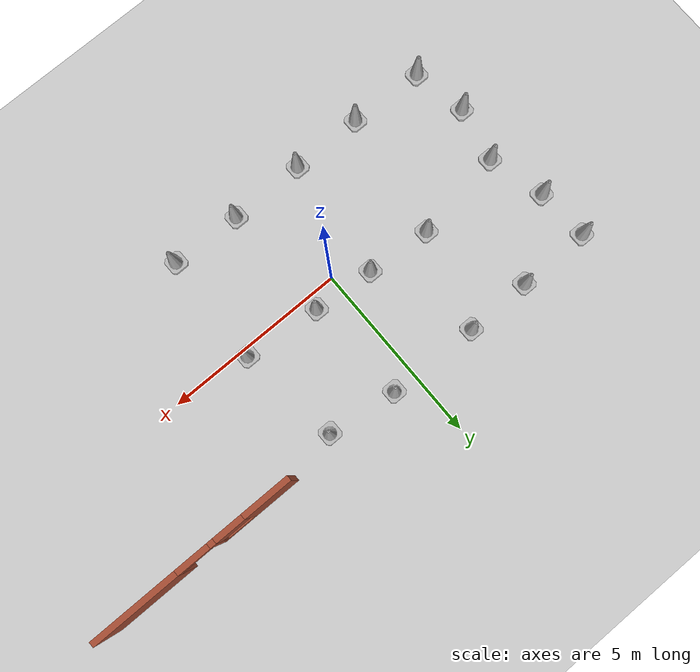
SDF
<sdf version="1.7">
 <world name="default">
  <light name="sun" type="directional">
   <pose>0 0 10 0 -0 0</pose>
   <diffuse>0.8 0.8 0.8 1</diffuse>
   <specular>0.2 0.2 0.2 1</specular>
   <attenuation>
    <range>1000</range>
    <constant>0.9</constant>
    <linear>0.01</linear>
    <quadratic>0.001</quadratic>
   </attenuation>
   <direction>-0.5 0.1 -0.9</direction>
   <spot><inner_angle>0</inner_angle><outer_angle>0</outer_angle><falloff>0</falloff></spot>
  </light>
  <model name="ground_plane">
   <static>1</static>
   <link name="link">
    <collision name="collision">
     <geometry><plane><normal>0 0 1</normal><size>100 100</size></plane></geometry>
     <surface>
      <contact><collide_bitmask>65535</collide_bitmask></contact>
      <friction><ode><mu>100</mu><mu2>50</mu2></ode></friction>
     </surface>
    </collision>
    <visual name="visual">
     <cast_shadows>0</cast_shadows>
     <geometry><plane><normal>0 0 1</normal><size>100 100</size></plane></geometry>
     <material>
      <script><uri>file://media/materials/scripts/gazebo.material</uri><name>Gazebo/Grey</name></script>
     </material>
    </visual>
   </link>
  </model>
  <gravity>0 0 -9.8</gravity>
  <magnetic_field>6e-06 2.3e-05 -4.2e-05</magnetic_field>
  <atmosphere type="adiabatic"/>
  <physics type="ode">
   <max_step_size>0.001</max_step_size>
   <real_time_factor>1</real_time_factor>
   <real_time_update_rate>1000</real_time_update_rate>
  </physics>
  <scene><ambient>0.4 0.4 0.4 1</ambient><background>0.7 0.7 0.7 1</background><shadows>1</shadows></scene>
  <audio><device>default</device></audio>
  <spherical_coordinates>
   <surface_model>EARTH_WGS84</surface_model>
   <latitude_deg>0</latitude_deg>
   <longitude_deg>0</longitude_deg>
   <elevation>0</elevation>
   <heading_deg>0</heading_deg>
  </spherical_coordinates>
  <model name="Construction Cone">
   <link name="link">
    <collision name="collision">
     <geometry>
      <mesh><scale>10 10 10</scale><uri>model://construction_cone/meshes/construction_cone.dae</uri></mesh>
     </geometry>
    </collision>
    <visual name="visual">
     <geometry>
      <mesh><scale>10 10 10</scale><uri>model://construction_cone/meshes/construction_cone.dae</uri></mesh>
     </geometry>
    </visual>
    <inertial>
     <inertia><ixx>1</ixx><ixy>0</ixy><ixz>0</ixz><iyy>1</iyy><iyz>0</iyz><izz>1</izz></inertia>
     <mass>1</mass>
    </inertial>
   </link>
   <pose>0.843751 -2.79758 0 -0 -0 -0</pose>
  </model>
  <model name="Construction Cone_clone">
   <link name="link">
    <collision name="collision">
     <geometry>
      <mesh><scale>10 10 10</scale><uri>model://construction_cone/meshes/construction_cone.dae</uri></mesh>
     </geometry>
    </collision>
    <visual name="visual">
     <geometry>
      <mesh><scale>10 10 10</scale><uri>model://construction_cone/meshes/construction_cone.dae</uri></mesh>
     </geometry>
    </visual>
    <inertial>
     <inertia><ixx>1</ixx><ixy>0</ixy><ixz>0</ixz><iyy>1</iyy><iyz>0</iyz><izz>1</izz></inertia>
     <mass>1</mass>
    </inertial>
   </link>
   <pose>-1.21765 -2.8196 -8e-06 4e-06 3e-06 -0</pose>
  </model>
  <model name="Construction Cone_clone_0">
   <link name="link">
    <collision name="collision">
     <geometry>
      <mesh><scale>10 10 10</scale><uri>model://construction_cone/meshes/construction_cone.dae</uri></mesh>
     </geometry>
    </collision>
    <visual name="visual">
     <geometry>
      <mesh><scale>10 10 10</scale><uri>model://construction_cone/meshes/construction_cone.dae</uri></mesh>
     </geometry>
    </visual>
    <inertial>
     <inertia><ixx>1</ixx><ixy>0</ixy><ixz>0</ixz><iyy>1</iyy><iyz>0</iyz><izz>1</izz></inertia>
     <mass>1</mass>
    </inertial>
   </link>
   <pose>-3.17314 -2.81652 -0 0 -0 0</pose>
  </model>
  <model name="Construction Cone_clone_1">
   <link name="link">
    <collision name="collision">
     <geometry>
      <mesh><scale>10 10 10</scale><uri>model://construction_cone/meshes/construction_cone.dae</uri></mesh>
     </geometry>
    </collision>
    <visual name="visual">
     <geometry>
      <mesh><scale>10 10 10</scale><uri>model://construction_cone/meshes/construction_cone.dae</uri></mesh>
     </geometry>
    </visual>
    <inertial>
     <inertia><ixx>1</ixx><ixy>0</ixy><ixz>0</ixz><iyy>1</iyy><iyz>0</iyz><izz>1</izz></inertia>
     <mass>1</mass>
    </inertial>
   </link>
   <pose>-5.22593 -2.75276 -0 0 -1e-06 0</pose>
  </model>
  <model name="Construction Cone_clone_2">
   <link name="link">
    <collision name="collision">
     <geometry>
      <mesh><scale>10 10 10</scale><uri>model://construction_cone/meshes/construction_cone.dae</uri></mesh>
     </geometry>
    </collision>
    <visual name="visual">
     <geometry>
      <mesh><scale>10 10 10</scale><uri>model://construction_cone/meshes/construction_cone.dae</uri></mesh>
     </geometry>
    </visual>
    <inertial>
     <inertia><ixx>1</ixx><ixy>0</ixy><ixz>0</ixz><iyy>1</iyy><iyz>0</iyz><izz>1</izz></inertia>
     <mass>1</mass>
    </inertial>
   </link>
   <pose>-5.50147 -1.24855 -0 0 -0 0</pose>
  </model>
  <model name="Construction Cone_clone_3">
   <link name="link">
    <collision name="collision">
     <geometry>
      <mesh><scale>10 10 10</scale><uri>model://construction_cone/meshes/construction_cone.dae</uri></mesh>
     </geometry>
    </collision>
    <visual name="visual">
     <geometry>
      <mesh><scale>10 10 10</scale><uri>model://construction_cone/meshes/construction_cone.dae</uri></mesh>
     </geometry>
    </visual>
    <inertial>
     <inertia><ixx>1</ixx><ixy>0</ixy><ixz>0</ixz><iyy>1</iyy><iyz>0</iyz><izz>1</izz></inertia>
     <mass>1</mass>
    </inertial>
   </link>
   <pose>-5.16582 0.24592 -0 0 -0 0</pose>
  </model>
  <model name="Construction Cone_clone_4">
   <link name="link">
    <collision name="collision">
     <geometry>
      <mesh><scale>10 10 10</scale><uri>model://construction_cone/meshes/construction_cone.dae</uri></mesh>
     </geometry>
    </collision>
    <visual name="visual">
     <geometry>
      <mesh><scale>10 10 10</scale><uri>model://construction_cone/meshes/construction_cone.dae</uri></mesh>
     </geometry>
    </visual>
    <inertial>
     <inertia><ixx>1</ixx><ixy>0</ixy><ixz>0</ixz><iyy>1</iyy><iyz>0</iyz><izz>1</izz></inertia>
     <mass>1</mass>
    </inertial>
   </link>
   <pose>-5.56846 1.80477 -0 0 -1e-06 0</pose>
  </model>
  <model name="Construction Cone_clone_5">
   <link name="link">
    <collision name="collision">
     <geometry>
      <mesh><scale>10 10 10</scale><uri>model://construction_cone/meshes/construction_cone.dae</uri></mesh>
     </geometry>
    </collision>
    <visual name="visual">
     <geometry>
      <mesh><scale>10 10 10</scale><uri>model://construction_cone/meshes/construction_cone.dae</uri></mesh>
     </geometry>
    </visual>
    <inertial>
     <inertia><ixx>1</ixx><ixy>0</ixy><ixz>0</ixz><iyy>1</iyy><iyz>0</iyz><izz>1</izz></inertia>
     <mass>1</mass>
    </inertial>
   </link>
   <pose>-5.64204 3.26233 -0 0 -1e-06 0</pose>
  </model>
  <model name="Construction Cone_clone_6">
   <link name="link">
    <collision name="collision">
     <geometry>
      <mesh><scale>10 10 10</scale><uri>model://construction_cone/meshes/construction_cone.dae</uri></mesh>
     </geometry>
    </collision>
    <visual name="visual">
     <geometry>
      <mesh><scale>10 10 10</scale><uri>model://construction_cone/meshes/construction_cone.dae</uri></mesh>
     </geometry>
    </visual>
    <inertial>
     <inertia><ixx>1</ixx><ixy>0</ixy><ixz>0</ixz><iyy>1</iyy><iyz>0</iyz><izz>1</izz></inertia>
     <mass>1</mass>
    </inertial>
   </link>
   <pose>2.76596 -2.85629 -0 0 -0 0</pose>
  </model>
  <model name="Construction Cone_clone_7">
   <link name="link">
    <collision name="collision">
     <geometry>
      <mesh><scale>10 10 10</scale><uri>model://construction_cone/meshes/construction_cone.dae</uri></mesh>
     </geometry>
    </collision>
    <visual name="visual">
     <geometry>
      <mesh><scale>10 10 10</scale><uri>model://construction_cone/meshes/construction_cone.dae</uri></mesh>
     </geometry>
    </visual>
    <inertial>
     <inertia><ixx>1</ixx><ixy>0</ixy><ixz>0</ixz><iyy>1</iyy><iyz>0</iyz><izz>1</izz></inertia>
     <mass>1</mass>
    </inertial>
   </link>
   <pose>-2.64748 0.634167 -0 0 -1e-06 0</pose>
  </model>
  <model name="Construction Cone_clone_8">
   <link name="link">
    <collision name="collision">
     <geometry>
      <mesh><scale>10 10 10</scale><uri>model://construction_cone/meshes/construction_cone.dae</uri></mesh>
     </geometry>
    </collision>
    <visual name="visual">
     <geometry>
      <mesh><scale>10 10 10</scale><uri>model://construction_cone/meshes/construction_cone.dae</uri></mesh>
     </geometry>
    </visual>
    <inertial>
     <inertia><ixx>1</ixx><ixy>0</ixy><ixz>0</ixz><iyy>1</iyy><iyz>0</iyz><izz>1</izz></inertia>
     <mass>1</mass>
    </inertial>
   </link>
   <pose>-0.880564 0.50047 -0 0 -1e-06 0</pose>
  </model>
  <model name="Construction Cone_clone_9">
   <link name="link">
    <collision name="collision">
     <geometry>
      <mesh><scale>10 10 10</scale><uri>model://construction_cone/meshes/construction_cone.dae</uri></mesh>
     </geometry>
    </collision>
    <visual name="visual">
     <geometry>
      <mesh><scale>10 10 10</scale><uri>model://construction_cone/meshes/construction_cone.dae</uri></mesh>
     </geometry>
    </visual>
    <inertial>
     <inertia><ixx>1</ixx><ixy>0</ixy><ixz>0</ixz><iyy>1</iyy><iyz>0</iyz><izz>1</izz></inertia>
     <mass>1</mass>
    </inertial>
   </link>
   <pose>0.79637 0.377799 -0 0 -0 0</pose>
  </model>
  <model name="Construction Cone_clone_10">
   <link name="link">
    <collision name="collision">
     <geometry>
      <mesh><scale>10 10 10</scale><uri>model://construction_cone/meshes/construction_cone.dae</uri></mesh>
     </geometry>
    </collision>
    <visual name="visual">
     <geometry>
      <mesh><scale>10 10 10</scale><uri>model://construction_cone/meshes/construction_cone.dae</uri></mesh>
     </geometry>
    </visual>
    <inertial>
     <inertia><ixx>1</ixx><ixy>0</ixy><ixz>0</ixz><iyy>1</iyy><iyz>0</iyz><izz>1</izz></inertia>
     <mass>1</mass>
    </inertial>
   </link>
   <pose>2.88708 0.18923 -0 0 -1e-06 0</pose>
  </model>
  <model name="Construction Cone_clone_11">
   <link name="link">
    <collision name="collision">
     <geometry>
      <mesh><scale>10 10 10</scale><uri>model://construction_cone/meshes/construction_cone.dae</uri></mesh>
     </geometry>
    </collision>
    <visual name="visual">
     <geometry>
      <mesh><scale>10 10 10</scale><uri>model://construction_cone/meshes/construction_cone.dae</uri></mesh>
     </geometry>
    </visual>
    <inertial>
     <inertia><ixx>1</ixx><ixy>0</ixy><ixz>0</ixz><iyy>1</iyy><iyz>0</iyz><izz>1</izz></inertia>
     <mass>1</mass>
    </inertial>
   </link>
   <pose>-3.65845 3.27673 -0 0 -0 0</pose>
  </model>
  <model name="Construction Cone_clone_12">
   <link name="link">
    <collision name="collision">
     <geometry>
      <mesh><scale>10 10 10</scale><uri>model://construction_cone/meshes/construction_cone.dae</uri></mesh>
     </geometry>
    </collision>
    <visual name="visual">
     <geometry>
      <mesh><scale>10 10 10</scale><uri>model://construction_cone/meshes/construction_cone.dae</uri></mesh>
     </geometry>
    </visual>
    <inertial>
     <inertia><ixx>1</ixx><ixy>0</ixy><ixz>0</ixz><iyy>1</iyy><iyz>0</iyz><izz>1</izz></inertia>
     <mass>1</mass>
    </inertial>
   </link>
   <pose>-1.85875 3.28999 -0 0 -0 0</pose>
  </model>
  <model name="Construction Cone_clone_13">
   <link name="link">
    <collision name="collision">
     <geometry>
      <mesh><scale>10 10 10</scale><uri>model://construction_cone/meshes/construction_cone.dae</uri></mesh>
     </geometry>
    </collision>
    <visual name="visual">
     <geometry>
      <mesh><scale>10 10 10</scale><uri>model://construction_cone/meshes/construction_cone.dae</uri></mesh>
     </geometry>
    </visual>
    <inertial>
     <inertia><ixx>1</ixx><ixy>0</ixy><ixz>0</ixz><iyy>1</iyy><iyz>0</iyz><izz>1</izz></inertia>
     <mass>1</mass>
    </inertial>
   </link>
   <pose>0.648236 3.23541 0 -0 -0 -0</pose>
  </model>
  <model name="Construction Cone_clone_14">
   <link name="link">
    <collision name="collision">
     <geometry>
      <mesh><scale>10 10 10</scale><uri>model://construction_cone/meshes/construction_cone.dae</uri></mesh>
     </geometry>
    </collision>
    <visual name="visual">
     <geometry>
      <mesh><scale>10 10 10</scale><uri>model://construction_cone/meshes/construction_cone.dae</uri></mesh>
     </geometry>
    </visual>
    <inertial>
     <inertia><ixx>1</ixx><ixy>0</ixy><ixz>0</ixz><iyy>1</iyy><iyz>0</iyz><izz>1</izz></inertia>
     <mass>1</mass>
    </inertial>
   </link>
   <pose>2.54316 2.9995 -0 0 -1e-06 0</pose>
  </model>
  <model name="door">
   <pose>4.68335 1.69596 0 0 -0 0</pose>
   <link name="Wall_4">
    <pose>1.93335 1.62096 0 0 -0 0</pose>
    <visual name="Wall_4_Visual_0">
     <pose>-2.08941 0 1.25 0 -0 0</pose>
     <geometry><box><size>1.32117 0.15 2.5</size></box></geometry>
     <material>
      <script><uri>file://media/materials/scripts/gazebo.material</uri><name>Gazebo/Bricks</name></script>
      <ambient>0.435294 0.796078 0.67451 1</ambient>
     </material>
     <meta><layer>0</layer></meta>
    </visual>
    <collision name="Wall_4_Collision_0">
     <geometry><box><size>1.32117 0.15 2.5</size></box></geometry>
     <pose>-2.08941 0 1.25 0 -0 0</pose>
    </collision>
    <visual name="Wall_4_Visual_1">
     <pose>1.5928 0 1.25 0 -0 0</pose>
     <geometry><box><size>2.3144 0.15 2.5</size></box></geometry>
     <material>
      <script><uri>file://media/materials/scripts/gazebo.material</uri><name>Gazebo/Bricks</name></script>
      <ambient>0.435294 0.796078 0.67451 1</ambient>
     </material>
     <meta><layer>0</layer></meta>
    </visual>
    <collision name="Wall_4_Collision_1">
     <geometry><box><size>2.3144 0.15 2.5</size></box></geometry>
     <pose>1.5928 0 1.25 0 -0 0</pose>
    </collision>
    <visual name="Wall_4_Visual_2">
     <pose>-0.946613 0 0.25 0 -0 0</pose>
     <geometry><box><size>0.964424 0.15 0.5</size></box></geometry>
     <material>
      <script><uri>file://media/materials/scripts/gazebo.material</uri><name>Gazebo/Bricks</name></script>
      <ambient>0.435294 0.796078 0.67451 1</ambient>
     </material>
     <meta><layer>0</layer></meta>
    </visual>
    <collision name="Wall_4_Collision_2">
     <geometry><box><size>0.964424 0.15 0.5</size></box></geometry>
     <pose>-0.946613 0 0.25 0 -0 0</pose>
    </collision>
    <visual name="Wall_4_Visual_3">
     <pose>-0.546613 0 1.5 0 -0 0</pose>
     <geometry><box><size>0.164424 0.15 2</size></box></geometry>
     <material>
      <script><uri>file://media/materials/scripts/gazebo.material</uri><name>Gazebo/Bricks</name></script>
      <ambient>0.435294 0.796078 0.67451 1</ambient>
     </material>
     <meta><layer>0</layer></meta>
    </visual>
    <collision name="Wall_4_Collision_3">
     <geometry><box><size>0.164424 0.15 2</size></box></geometry>
     <pose>-0.546613 0 1.5 0 -0 0</pose>
    </collision>
    <visual name="Wall_4_Visual_4">
     <pose>-1.02883 0 1.9 0 -0 0</pose>
     <geometry><box><size>0.8 0.15 1.2</size></box></geometry>
     <material>
      <script><uri>file://media/materials/scripts/gazebo.material</uri><name>Gazebo/Bricks</name></script>
      <ambient>0.435294 0.796078 0.67451 1</ambient>
     </material>
     <meta><layer>0</layer></meta>
    </visual>
    <collision name="Wall_4_Collision_4">
     <geometry><box><size>0.8 0.15 1.2</size></box></geometry>
     <pose>-1.02883 0 1.9 0 -0 0</pose>
    </collision>
    <visual name="Wall_4_Visual_5">
     <pose>-0.014401 0 2.25 0 -0 0</pose>
     <geometry><box><size>0.9 0.15 0.5</size></box></geometry>
     <material>
      <script><uri>file://media/materials/scripts/gazebo.material</uri><name>Gazebo/Bricks</name></script>
      <ambient>0.435294 0.796078 0.67451 1</ambient>
     </material>
     <meta><layer>0</layer></meta>
    </visual>
    <collision name="Wall_4_Collision_5">
     <geometry><box><size>0.9 0.15 0.5</size></box></geometry>
     <pose>-0.014401 0 2.25 0 -0 0</pose>
    </collision>
   </link>
   <static>1</static>
  </model>
 </world>
</sdf>
